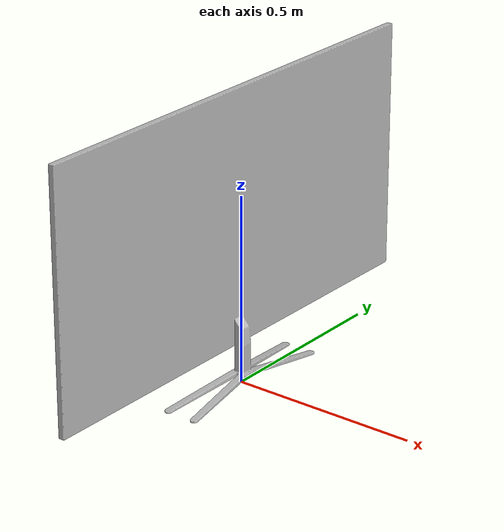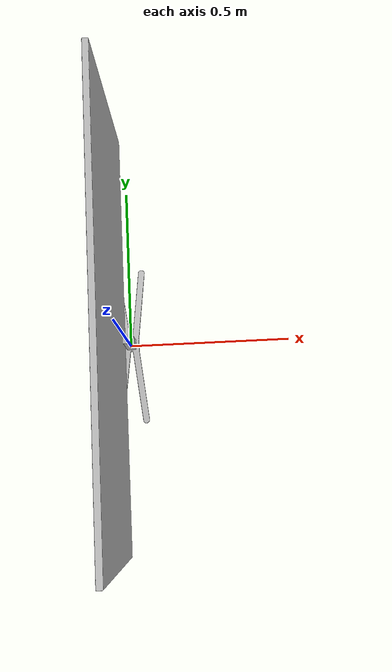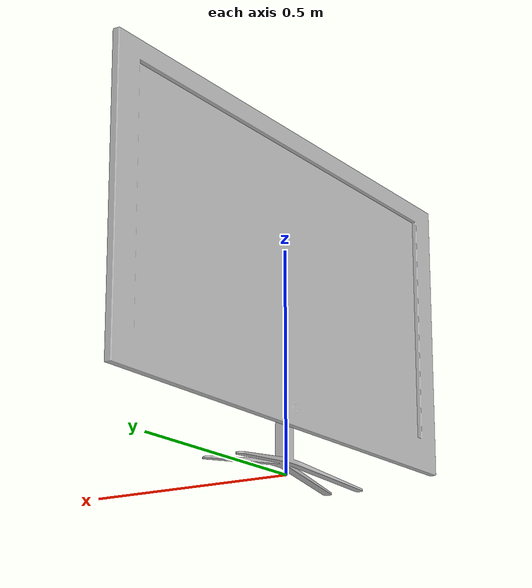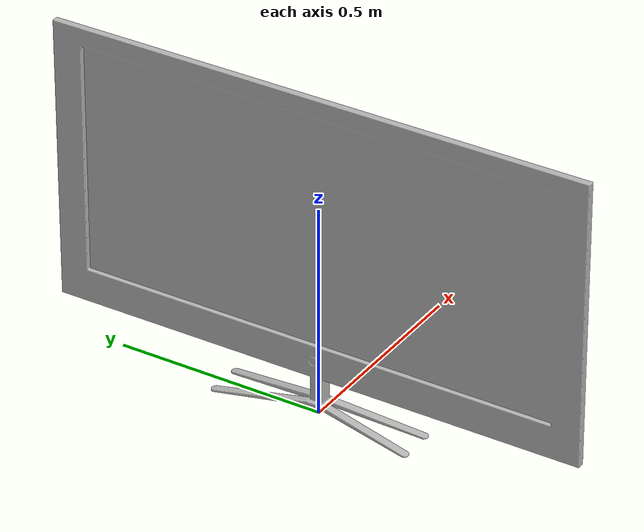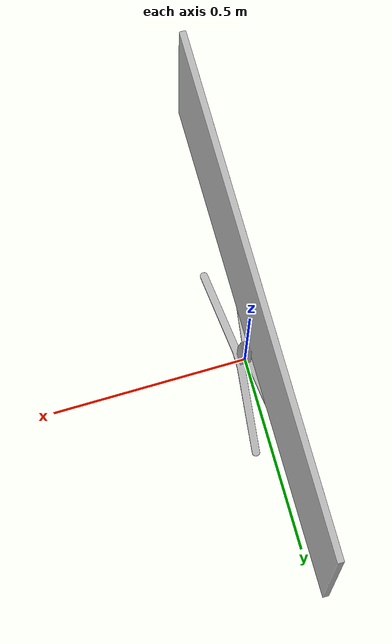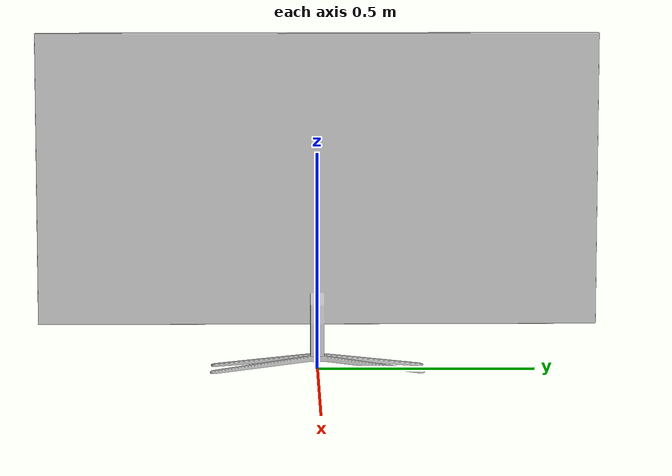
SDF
<?xml version='1.0'?>
<sdf version='1.4'>
  <model name='114'>
    <pose>0 0 0 0 0 0</pose>
    <static>true</static>
    <link name='link'>
      <collision name='collision'>
        <pose>0 0 0 0 0 0</pose>
        <geometry>
          <box>
            <size>0.0999499 1.28 2</size>
          </box>
        </geometry>
      </collision>
      <visual name='visual'>
        <pose>0 0 0 0 0 0</pose>
        <geometry>
          <mesh><uri>model://114/114.dae</uri></mesh>
        </geometry>
      </visual>
    </link>
  </model>
</sdf>
